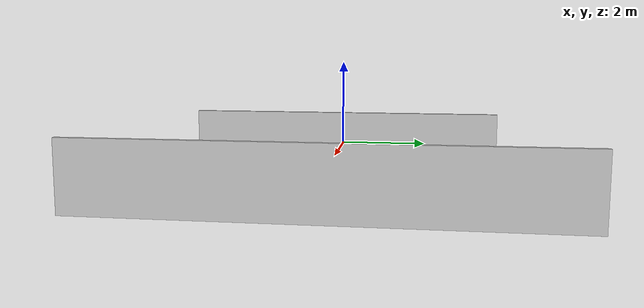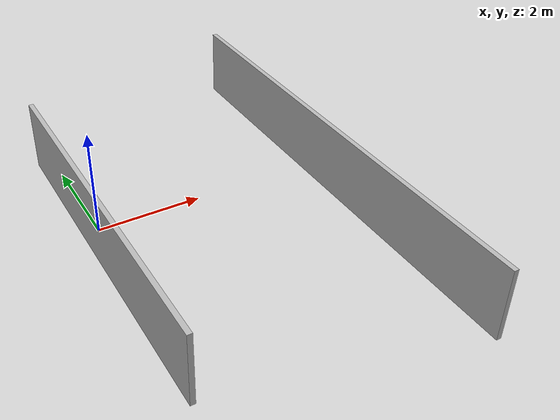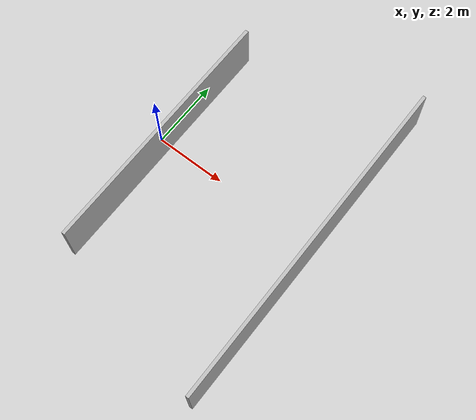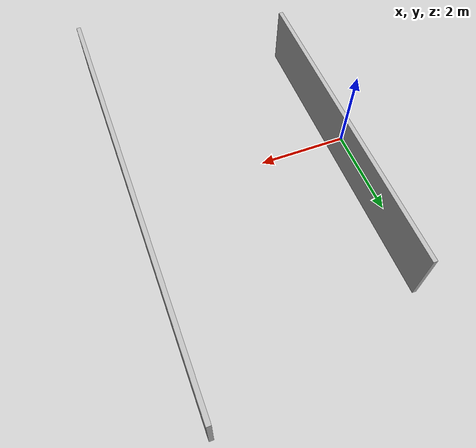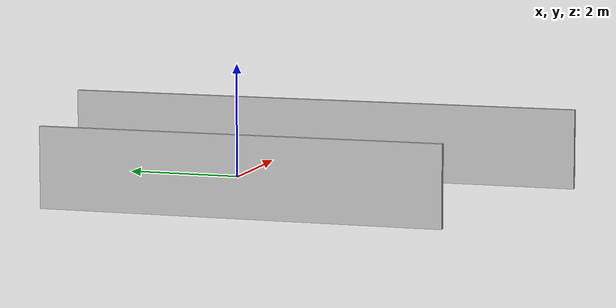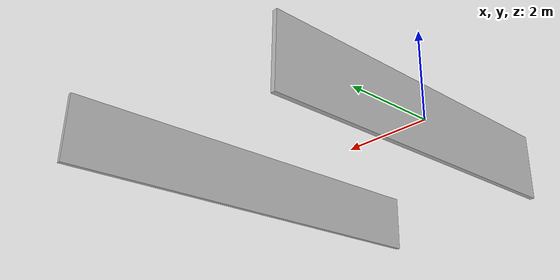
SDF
<?xml version="1.0" ?>
<sdf version="1.6">
  <model name="utokyo_walls01">
    <static>true</static>
    <link name="link">
      <collision name="collision">
        <pose>0 0 0 0 0 -1.57079632679</pose>
        <geometry>
          <box>
            <size>7.5 .1 1.5</size>
          </box>
        </geometry>
      </collision>
      <visual name="visual">
        <pose>0 0 0 0 0 -1.57079632679</pose>
        <geometry>
          <box>
            <size>7.5 .1 1.5</size>
          </box>
        </geometry>
      </visual>

      <collision name="wall02">
        <pose>5 0 0 0 0 1.570796</pose>
        <geometry>
          <box>
            <size>10 .1 1.5</size>
          </box>
        </geometry>
      </collision>
      <visual name="wall02">
        <pose>5 0 0 0 0 1.570796</pose>
        <geometry>
          <box>
            <size>10 .1 1.5</size>
          </box>
        </geometry>
      </visual>
    </link>

  </model>
</sdf>
